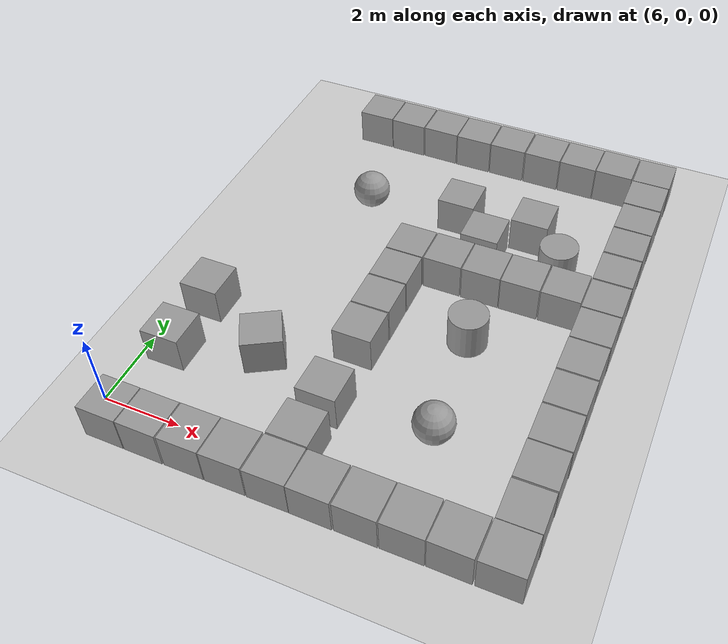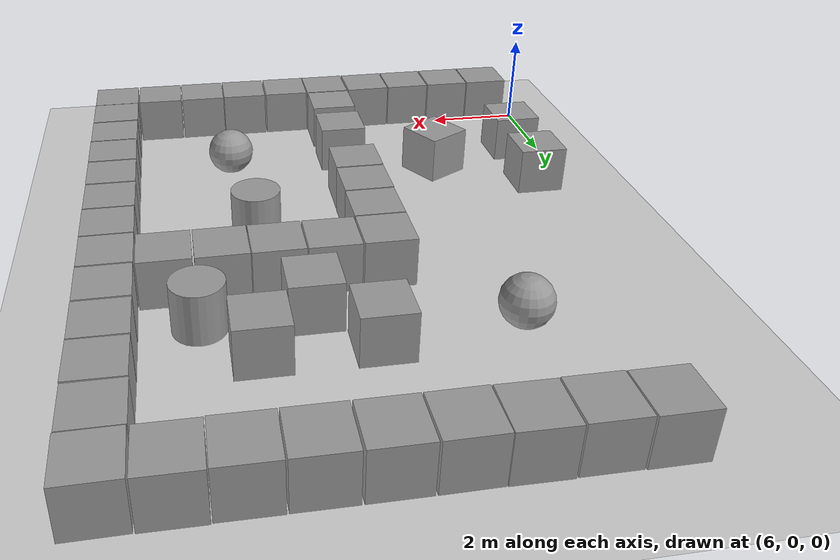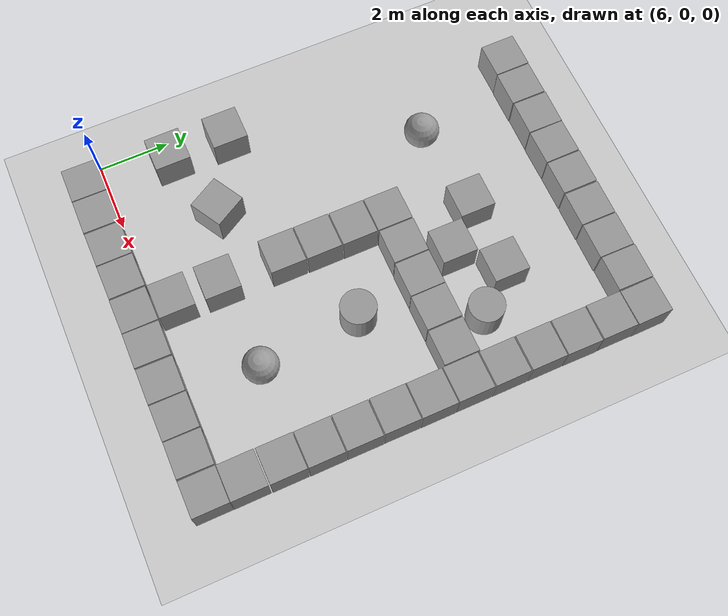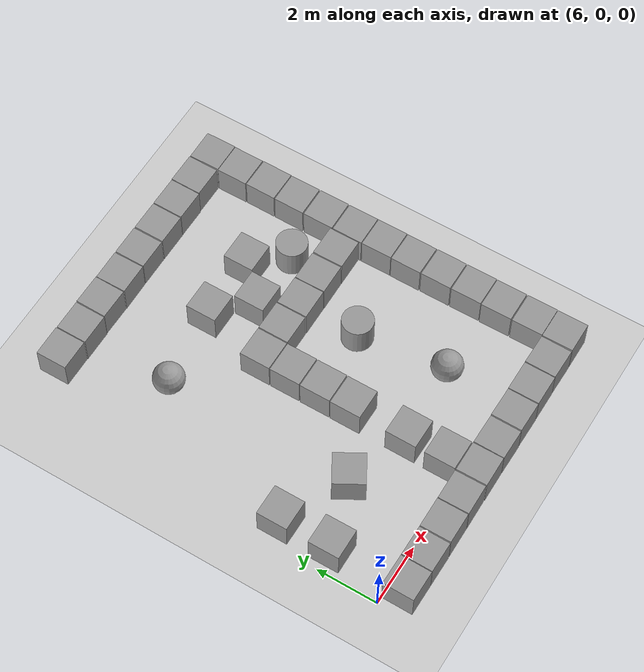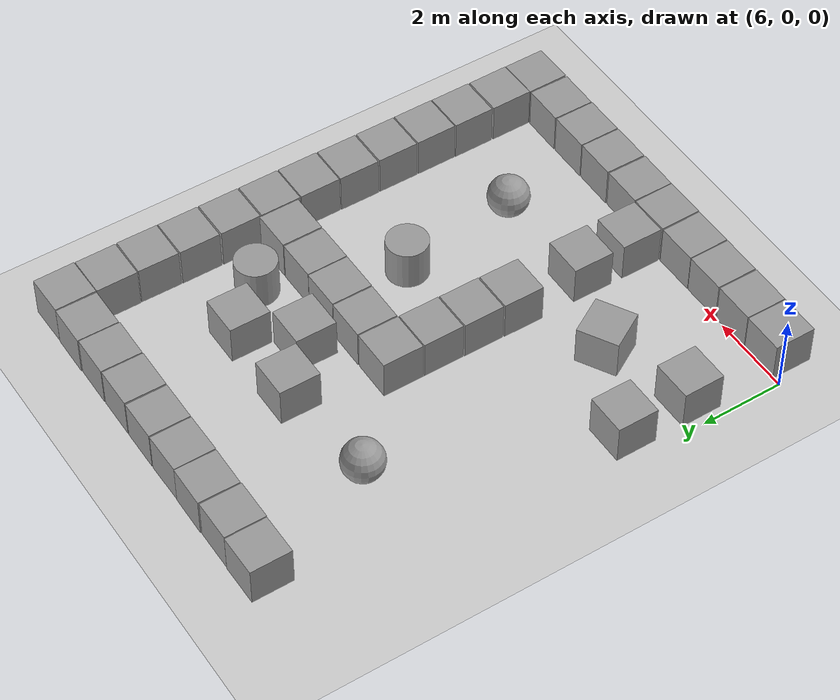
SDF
<sdf version="1.6">
 <world name="tight_mix">
  <include><uri>model://ground_plane</uri></include>
  <include><uri>model://sun</uri></include>
  <model name="unit_box_7">
   <pose>6.7133 -0.4996 0.5 0 0 -0.00618</pose>
   <link name="link">
    <inertial>
     <mass>1</mass>
     <inertia>
      <ixx>0.166667</ixx>
      <ixy>0</ixy>
      <ixz>0</ixz>
      <iyy>0.166667</iyy>
      <iyz>0</iyz>
      <izz>0.166667</izz>
     </inertia>
    </inertial>
    <collision name="collision"><geometry><box><size>1 1 1</size></box></geometry></collision>
    <visual name="visual">
     <geometry><box><size>1 1 1</size></box></geometry>
     <material>
      <script><uri>file://media/materials/scripts/gazebo.material</uri><name>Gazebo/Grey</name></script>
     </material>
    </visual>
   </link>
  </model>
  <model name="unit_box_8">
   <pose>7.7363 -0.5050 0.5 0 0 -0.00628</pose>
   <link name="link">
    <inertial>
     <mass>1</mass>
     <inertia>
      <ixx>0.166667</ixx>
      <ixy>0</ixy>
      <ixz>0</ixz>
      <iyy>0.166667</iyy>
      <iyz>0</iyz>
      <izz>0.166667</izz>
     </inertia>
    </inertial>
    <collision name="collision"><geometry><box><size>1 1 1</size></box></geometry></collision>
    <visual name="visual">
     <geometry><box><size>1 1 1</size></box></geometry>
     <material>
      <script><uri>file://media/materials/scripts/gazebo.material</uri><name>Gazebo/Grey</name></script>
     </material>
    </visual>
   </link>
  </model>
  <model name="unit_box_9">
   <pose>8.7707 -0.5007 0.5 0 0 0.00428</pose>
   <link name="link">
    <inertial>
     <mass>1</mass>
     <inertia>
      <ixx>0.166667</ixx>
      <ixy>0</ixy>
      <ixz>0</ixz>
      <iyy>0.166667</iyy>
      <iyz>0</iyz>
      <izz>0.166667</izz>
     </inertia>
    </inertial>
    <collision name="collision"><geometry><box><size>1 1 1</size></box></geometry></collision>
    <visual name="visual">
     <geometry><box><size>1 1 1</size></box></geometry>
     <material>
      <script><uri>file://media/materials/scripts/gazebo.material</uri><name>Gazebo/Grey</name></script>
     </material>
    </visual>
   </link>
  </model>
  <model name="unit_box_10">
   <pose>9.7949 -0.4959 0.5 0 0 0.01010</pose>
   <link name="link">
    <inertial>
     <mass>1</mass>
     <inertia>
      <ixx>0.166667</ixx>
      <ixy>0</ixy>
      <ixz>0</ixz>
      <iyy>0.166667</iyy>
      <iyz>0</iyz>
      <izz>0.166667</izz>
     </inertia>
    </inertial>
    <collision name="collision"><geometry><box><size>1 1 1</size></box></geometry></collision>
    <visual name="visual">
     <geometry><box><size>1 1 1</size></box></geometry>
     <material>
      <script><uri>file://media/materials/scripts/gazebo.material</uri><name>Gazebo/Grey</name></script>
     </material>
    </visual>
   </link>
  </model>
  <model name="unit_box_11">
   <pose>10.8329 -0.4971 0.5 0 0 0.00733</pose>
   <link name="link">
    <inertial>
     <mass>1</mass>
     <inertia>
      <ixx>0.166667</ixx>
      <ixy>0</ixy>
      <ixz>0</ixz>
      <iyy>0.166667</iyy>
      <iyz>0</iyz>
      <izz>0.166667</izz>
     </inertia>
    </inertial>
    <collision name="collision"><geometry><box><size>1 1 1</size></box></geometry></collision>
    <visual name="visual">
     <geometry><box><size>1 1 1</size></box></geometry>
     <material>
      <script><uri>file://media/materials/scripts/gazebo.material</uri><name>Gazebo/Grey</name></script>
     </material>
    </visual>
   </link>
  </model>
  <model name="unit_box_12">
   <pose>11.8551 -0.5005 0.5 0 0 -0.00881</pose>
   <link name="link">
    <inertial>
     <mass>1</mass>
     <inertia>
      <ixx>0.166667</ixx>
      <ixy>0</ixy>
      <ixz>0</ixz>
      <iyy>0.166667</iyy>
      <iyz>0</iyz>
      <izz>0.166667</izz>
     </inertia>
    </inertial>
    <collision name="collision"><geometry><box><size>1 1 1</size></box></geometry></collision>
    <visual name="visual">
     <geometry><box><size>1 1 1</size></box></geometry>
     <material>
      <script><uri>file://media/materials/scripts/gazebo.material</uri><name>Gazebo/Grey</name></script>
     </material>
    </visual>
   </link>
  </model>
  <model name="unit_box_13">
   <pose>12.8934 -0.4995 0.5 0 0 -0.00824</pose>
   <link name="link">
    <inertial>
     <mass>1</mass>
     <inertia>
      <ixx>0.166667</ixx>
      <ixy>0</ixy>
      <ixz>0</ixz>
      <iyy>0.166667</iyy>
      <iyz>0</iyz>
      <izz>0.166667</izz>
     </inertia>
    </inertial>
    <collision name="collision"><geometry><box><size>1 1 1</size></box></geometry></collision>
    <visual name="visual">
     <geometry><box><size>1 1 1</size></box></geometry>
     <material>
      <script><uri>file://media/materials/scripts/gazebo.material</uri><name>Gazebo/Grey</name></script>
     </material>
    </visual>
   </link>
  </model>
  <model name="unit_box_14">
   <pose>13.9193 -0.4967 0.5 0 0 0.00109</pose>
   <link name="link">
    <inertial>
     <mass>1</mass>
     <inertia>
      <ixx>0.166667</ixx>
      <ixy>0</ixy>
      <ixz>0</ixz>
      <iyy>0.166667</iyy>
      <iyz>0</iyz>
      <izz>0.166667</izz>
     </inertia>
    </inertial>
    <collision name="collision"><geometry><box><size>1 1 1</size></box></geometry></collision>
    <visual name="visual">
     <geometry><box><size>1 1 1</size></box></geometry>
     <material>
      <script><uri>file://media/materials/scripts/gazebo.material</uri><name>Gazebo/Grey</name></script>
     </material>
    </visual>
   </link>
  </model>
  <model name="unit_box_15">
   <pose>14.9455 -0.4948 0.5 0 0 -0.00929</pose>
   <link name="link">
    <inertial>
     <mass>1</mass>
     <inertia>
      <ixx>0.166667</ixx>
      <ixy>0</ixy>
      <ixz>0</ixz>
      <iyy>0.166667</iyy>
      <iyz>0</iyz>
      <izz>0.166667</izz>
     </inertia>
    </inertial>
    <collision name="collision"><geometry><box><size>1 1 1</size></box></geometry></collision>
    <visual name="visual">
     <geometry><box><size>1 1 1</size></box></geometry>
     <material>
      <script><uri>file://media/materials/scripts/gazebo.material</uri><name>Gazebo/Grey</name></script>
     </material>
    </visual>
   </link>
  </model>
  <model name="unit_box_16">
   <pose>15.9841 -0.4943 0.5 0 0 0.00526</pose>
   <link name="link">
    <inertial>
     <mass>1</mass>
     <inertia>
      <ixx>0.166667</ixx>
      <ixy>0</ixy>
      <ixz>0</ixz>
      <iyy>0.166667</iyy>
      <iyz>0</iyz>
      <izz>0.166667</izz>
     </inertia>
    </inertial>
    <collision name="collision"><geometry><box><size>1 1 1</size></box></geometry></collision>
    <visual name="visual">
     <geometry><box><size>1 1 1</size></box></geometry>
     <material>
      <script><uri>file://media/materials/scripts/gazebo.material</uri><name>Gazebo/Grey</name></script>
     </material>
    </visual>
   </link>
  </model>
  <model name="unit_box_25">
   <pose>7.7450 11.8651 0.5 0 0 0.00525</pose>
   <link name="link">
    <inertial>
     <mass>1</mass>
     <inertia>
      <ixx>0.166667</ixx>
      <ixy>0</ixy>
      <ixz>0</ixz>
      <iyy>0.166667</iyy>
      <iyz>0</iyz>
      <izz>0.166667</izz>
     </inertia>
    </inertial>
    <collision name="collision"><geometry><box><size>1 1 1</size></box></geometry></collision>
    <visual name="visual">
     <geometry><box><size>1 1 1</size></box></geometry>
     <material>
      <script><uri>file://media/materials/scripts/gazebo.material</uri><name>Gazebo/Grey</name></script>
     </material>
    </visual>
   </link>
  </model>
  <model name="unit_box_26">
   <pose>8.7709 11.8547 0.5 0 0 -0.00039</pose>
   <link name="link">
    <inertial>
     <mass>1</mass>
     <inertia>
      <ixx>0.166667</ixx>
      <ixy>0</ixy>
      <ixz>0</ixz>
      <iyy>0.166667</iyy>
      <iyz>0</iyz>
      <izz>0.166667</izz>
     </inertia>
    </inertial>
    <collision name="collision"><geometry><box><size>1 1 1</size></box></geometry></collision>
    <visual name="visual">
     <geometry><box><size>1 1 1</size></box></geometry>
     <material>
      <script><uri>file://media/materials/scripts/gazebo.material</uri><name>Gazebo/Grey</name></script>
     </material>
    </visual>
   </link>
  </model>
  <model name="unit_box_27">
   <pose>9.8031 11.8631 0.5 0 0 -0.00991</pose>
   <link name="link">
    <inertial>
     <mass>1</mass>
     <inertia>
      <ixx>0.166667</ixx>
      <ixy>0</ixy>
      <ixz>0</ixz>
      <iyy>0.166667</iyy>
      <iyz>0</iyz>
      <izz>0.166667</izz>
     </inertia>
    </inertial>
    <collision name="collision"><geometry><box><size>1 1 1</size></box></geometry></collision>
    <visual name="visual">
     <geometry><box><size>1 1 1</size></box></geometry>
     <material>
      <script><uri>file://media/materials/scripts/gazebo.material</uri><name>Gazebo/Grey</name></script>
     </material>
    </visual>
   </link>
  </model>
  <model name="unit_box_28">
   <pose>10.8241 11.8551 0.5 0 0 0.00889</pose>
   <link name="link">
    <inertial>
     <mass>1</mass>
     <inertia>
      <ixx>0.166667</ixx>
      <ixy>0</ixy>
      <ixz>0</ixz>
      <iyy>0.166667</iyy>
      <iyz>0</iyz>
      <izz>0.166667</izz>
     </inertia>
    </inertial>
    <collision name="collision"><geometry><box><size>1 1 1</size></box></geometry></collision>
    <visual name="visual">
     <geometry><box><size>1 1 1</size></box></geometry>
     <material>
      <script><uri>file://media/materials/scripts/gazebo.material</uri><name>Gazebo/Grey</name></script>
     </material>
    </visual>
   </link>
  </model>
  <model name="unit_box_29">
   <pose>11.8554 11.8587 0.5 0 0 -0.00050</pose>
   <link name="link">
    <inertial>
     <mass>1</mass>
     <inertia>
      <ixx>0.166667</ixx>
      <ixy>0</ixy>
      <ixz>0</ixz>
      <iyy>0.166667</iyy>
      <iyz>0</iyz>
      <izz>0.166667</izz>
     </inertia>
    </inertial>
    <collision name="collision"><geometry><box><size>1 1 1</size></box></geometry></collision>
    <visual name="visual">
     <geometry><box><size>1 1 1</size></box></geometry>
     <material>
      <script><uri>file://media/materials/scripts/gazebo.material</uri><name>Gazebo/Grey</name></script>
     </material>
    </visual>
   </link>
  </model>
  <model name="unit_box_30">
   <pose>12.8946 11.8556 0.5 0 0 -0.00499</pose>
   <link name="link">
    <inertial>
     <mass>1</mass>
     <inertia>
      <ixx>0.166667</ixx>
      <ixy>0</ixy>
      <ixz>0</ixz>
      <iyy>0.166667</iyy>
      <iyz>0</iyz>
      <izz>0.166667</izz>
     </inertia>
    </inertial>
    <collision name="collision"><geometry><box><size>1 1 1</size></box></geometry></collision>
    <visual name="visual">
     <geometry><box><size>1 1 1</size></box></geometry>
     <material>
      <script><uri>file://media/materials/scripts/gazebo.material</uri><name>Gazebo/Grey</name></script>
     </material>
    </visual>
   </link>
  </model>
  <model name="unit_box_31">
   <pose>13.9233 11.8550 0.5 0 0 -0.00703</pose>
   <link name="link">
    <inertial>
     <mass>1</mass>
     <inertia>
      <ixx>0.166667</ixx>
      <ixy>0</ixy>
      <ixz>0</ixz>
      <iyy>0.166667</iyy>
      <iyz>0</iyz>
      <izz>0.166667</izz>
     </inertia>
    </inertial>
    <collision name="collision"><geometry><box><size>1 1 1</size></box></geometry></collision>
    <visual name="visual">
     <geometry><box><size>1 1 1</size></box></geometry>
     <material>
      <script><uri>file://media/materials/scripts/gazebo.material</uri><name>Gazebo/Grey</name></script>
     </material>
    </visual>
   </link>
  </model>
  <model name="unit_box_32">
   <pose>14.9443 11.8655 0.5 0 0 -0.00558</pose>
   <link name="link">
    <inertial>
     <mass>1</mass>
     <inertia>
      <ixx>0.166667</ixx>
      <ixy>0</ixy>
      <ixz>0</ixz>
      <iyy>0.166667</iyy>
      <iyz>0</iyz>
      <izz>0.166667</izz>
     </inertia>
    </inertial>
    <collision name="collision"><geometry><box><size>1 1 1</size></box></geometry></collision>
    <visual name="visual">
     <geometry><box><size>1 1 1</size></box></geometry>
     <material>
      <script><uri>file://media/materials/scripts/gazebo.material</uri><name>Gazebo/Grey</name></script>
     </material>
    </visual>
   </link>
  </model>
  <model name="unit_box_33">
   <pose>15.9800 11.8585 0.5 0 0 0.01009</pose>
   <link name="link">
    <inertial>
     <mass>1</mass>
     <inertia>
      <ixx>0.166667</ixx>
      <ixy>0</ixy>
      <ixz>0</ixz>
      <iyy>0.166667</iyy>
      <iyz>0</iyz>
      <izz>0.166667</izz>
     </inertia>
    </inertial>
    <collision name="collision"><geometry><box><size>1 1 1</size></box></geometry></collision>
    <visual name="visual">
     <geometry><box><size>1 1 1</size></box></geometry>
     <material>
      <script><uri>file://media/materials/scripts/gazebo.material</uri><name>Gazebo/Grey</name></script>
     </material>
    </visual>
   </link>
  </model>
  <model name="unit_box_45">
   <pose>15.9843 0.5179 0.5 0 0 0.00867</pose>
   <link name="link">
    <inertial>
     <mass>1</mass>
     <inertia>
      <ixx>0.166667</ixx>
      <ixy>0</ixy>
      <ixz>0</ixz>
      <iyy>0.166667</iyy>
      <iyz>0</iyz>
      <izz>0.166667</izz>
     </inertia>
    </inertial>
    <collision name="collision"><geometry><box><size>1 1 1</size></box></geometry></collision>
    <visual name="visual">
     <geometry><box><size>1 1 1</size></box></geometry>
     <material>
      <script><uri>file://media/materials/scripts/gazebo.material</uri><name>Gazebo/Grey</name></script>
     </material>
    </visual>
   </link>
  </model>
  <model name="unit_box_46">
   <pose>15.9833 1.5576 0.5 0 0 0.00534</pose>
   <link name="link">
    <inertial>
     <mass>1</mass>
     <inertia>
      <ixx>0.166667</ixx>
      <ixy>0</ixy>
      <ixz>0</ixz>
      <iyy>0.166667</iyy>
      <iyz>0</iyz>
      <izz>0.166667</izz>
     </inertia>
    </inertial>
    <collision name="collision"><geometry><box><size>1 1 1</size></box></geometry></collision>
    <visual name="visual">
     <geometry><box><size>1 1 1</size></box></geometry>
     <material>
      <script><uri>file://media/materials/scripts/gazebo.material</uri><name>Gazebo/Grey</name></script>
     </material>
    </visual>
   </link>
  </model>
  <model name="unit_box_47">
   <pose>15.9860 2.5837 0.5 0 0 0.00522</pose>
   <link name="link">
    <inertial>
     <mass>1</mass>
     <inertia>
      <ixx>0.166667</ixx>
      <ixy>0</ixy>
      <ixz>0</ixz>
      <iyy>0.166667</iyy>
      <iyz>0</iyz>
      <izz>0.166667</izz>
     </inertia>
    </inertial>
    <collision name="collision"><geometry><box><size>1 1 1</size></box></geometry></collision>
    <visual name="visual">
     <geometry><box><size>1 1 1</size></box></geometry>
     <material>
      <script><uri>file://media/materials/scripts/gazebo.material</uri><name>Gazebo/Grey</name></script>
     </material>
    </visual>
   </link>
  </model>
  <model name="unit_box_48">
   <pose>15.9834 3.6163 0.5 0 0 0.00009</pose>
   <link name="link">
    <inertial>
     <mass>1</mass>
     <inertia>
      <ixx>0.166667</ixx>
      <ixy>0</ixy>
      <ixz>0</ixz>
      <iyy>0.166667</iyy>
      <iyz>0</iyz>
      <izz>0.166667</izz>
     </inertia>
    </inertial>
    <collision name="collision"><geometry><box><size>1 1 1</size></box></geometry></collision>
    <visual name="visual">
     <geometry><box><size>1 1 1</size></box></geometry>
     <material>
      <script><uri>file://media/materials/scripts/gazebo.material</uri><name>Gazebo/Grey</name></script>
     </material>
    </visual>
   </link>
  </model>
  <model name="unit_box_49">
   <pose>15.9788 4.6524 0.5 0 0 -0.00254</pose>
   <link name="link">
    <inertial>
     <mass>1</mass>
     <inertia>
      <ixx>0.166667</ixx>
      <ixy>0</ixy>
      <ixz>0</ixz>
      <iyy>0.166667</iyy>
      <iyz>0</iyz>
      <izz>0.166667</izz>
     </inertia>
    </inertial>
    <collision name="collision"><geometry><box><size>1 1 1</size></box></geometry></collision>
    <visual name="visual">
     <geometry><box><size>1 1 1</size></box></geometry>
     <material>
      <script><uri>file://media/materials/scripts/gazebo.material</uri><name>Gazebo/Grey</name></script>
     </material>
    </visual>
   </link>
  </model>
  <model name="unit_box_50">
   <pose>15.9830 5.6807 0.5 0 0 0.00433</pose>
   <link name="link">
    <inertial>
     <mass>1</mass>
     <inertia>
      <ixx>0.166667</ixx>
      <ixy>0</ixy>
      <ixz>0</ixz>
      <iyy>0.166667</iyy>
      <iyz>0</iyz>
      <izz>0.166667</izz>
     </inertia>
    </inertial>
    <collision name="collision"><geometry><box><size>1 1 1</size></box></geometry></collision>
    <visual name="visual">
     <geometry><box><size>1 1 1</size></box></geometry>
     <material>
      <script><uri>file://media/materials/scripts/gazebo.material</uri><name>Gazebo/Grey</name></script>
     </material>
    </visual>
   </link>
  </model>
  <model name="unit_box_51">
   <pose>15.9777 6.7069 0.5 0 0 0.00367</pose>
   <link name="link">
    <inertial>
     <mass>1</mass>
     <inertia>
      <ixx>0.166667</ixx>
      <ixy>0</ixy>
      <ixz>0</ixz>
      <iyy>0.166667</iyy>
      <iyz>0</iyz>
      <izz>0.166667</izz>
     </inertia>
    </inertial>
    <collision name="collision"><geometry><box><size>1 1 1</size></box></geometry></collision>
    <visual name="visual">
     <geometry><box><size>1 1 1</size></box></geometry>
     <material>
      <script><uri>file://media/materials/scripts/gazebo.material</uri><name>Gazebo/Grey</name></script>
     </material>
    </visual>
   </link>
  </model>
  <model name="unit_box_52">
   <pose>15.9757 7.7423 0.5 0 0 0.00590</pose>
   <link name="link">
    <inertial>
     <mass>1</mass>
     <inertia>
      <ixx>0.166667</ixx>
      <ixy>0</ixy>
      <ixz>0</ixz>
      <iyy>0.166667</iyy>
      <iyz>0</iyz>
      <izz>0.166667</izz>
     </inertia>
    </inertial>
    <collision name="collision"><geometry><box><size>1 1 1</size></box></geometry></collision>
    <visual name="visual">
     <geometry><box><size>1 1 1</size></box></geometry>
     <material>
      <script><uri>file://media/materials/scripts/gazebo.material</uri><name>Gazebo/Grey</name></script>
     </material>
    </visual>
   </link>
  </model>
  <model name="unit_box_53">
   <pose>15.9746 8.7809 0.5 0 0 0.00186</pose>
   <link name="link">
    <inertial>
     <mass>1</mass>
     <inertia>
      <ixx>0.166667</ixx>
      <ixy>0</ixy>
      <ixz>0</ixz>
      <iyy>0.166667</iyy>
      <iyz>0</iyz>
      <izz>0.166667</izz>
     </inertia>
    </inertial>
    <collision name="collision"><geometry><box><size>1 1 1</size></box></geometry></collision>
    <visual name="visual">
     <geometry><box><size>1 1 1</size></box></geometry>
     <material>
      <script><uri>file://media/materials/scripts/gazebo.material</uri><name>Gazebo/Grey</name></script>
     </material>
    </visual>
   </link>
  </model>
  <model name="unit_box_54">
   <pose>15.9807 9.8101 0.5 0 0 -0.00928</pose>
   <link name="link">
    <inertial>
     <mass>1</mass>
     <inertia>
      <ixx>0.166667</ixx>
      <ixy>0</ixy>
      <ixz>0</ixz>
      <iyy>0.166667</iyy>
      <iyz>0</iyz>
      <izz>0.166667</izz>
     </inertia>
    </inertial>
    <collision name="collision"><geometry><box><size>1 1 1</size></box></geometry></collision>
    <visual name="visual">
     <geometry><box><size>1 1 1</size></box></geometry>
     <material>
      <script><uri>file://media/materials/scripts/gazebo.material</uri><name>Gazebo/Grey</name></script>
     </material>
    </visual>
   </link>
  </model>
  <model name="unit_box_55">
   <pose>15.9743 10.8426 0.5 0 0 0.00181</pose>
   <link name="link">
    <inertial>
     <mass>1</mass>
     <inertia>
      <ixx>0.166667</ixx>
      <ixy>0</ixy>
      <ixz>0</ixz>
      <iyy>0.166667</iyy>
      <iyz>0</iyz>
      <izz>0.166667</izz>
     </inertia>
    </inertial>
    <collision name="collision"><geometry><box><size>1 1 1</size></box></geometry></collision>
    <visual name="visual">
     <geometry><box><size>1 1 1</size></box></geometry>
     <material>
      <script><uri>file://media/materials/scripts/gazebo.material</uri><name>Gazebo/Grey</name></script>
     </material>
    </visual>
   </link>
  </model>
  <model name="unit_box_62">
   <pose>6.7089 1.9158 0.5 0 0 0.00734</pose>
   <link name="link">
    <inertial>
     <mass>1</mass>
     <inertia>
      <ixx>0.166667</ixx>
      <ixy>0</ixy>
      <ixz>0</ixz>
      <iyy>0.166667</iyy>
      <iyz>0</iyz>
      <izz>0.166667</izz>
     </inertia>
    </inertial>
    <collision name="collision"><geometry><box><size>1 1 1</size></box></geometry></collision>
    <visual name="visual">
     <geometry><box><size>1 1 1</size></box></geometry>
     <material>
      <script><uri>file://media/materials/scripts/gazebo.material</uri><name>Gazebo/Grey</name></script>
     </material>
    </visual>
   </link>
  </model>
  <model name="unit_box_67">
   <pose>6.7120 3.6148 0.5 0 0 0.00106</pose>
   <link name="link">
    <inertial>
     <mass>1</mass>
     <inertia>
      <ixx>0.166667</ixx>
      <ixy>0</ixy>
      <ixz>0</ixz>
      <iyy>0.166667</iyy>
      <iyz>0</iyz>
      <izz>0.166667</izz>
     </inertia>
    </inertial>
    <collision name="collision"><geometry><box><size>1 1 1</size></box></geometry></collision>
    <visual name="visual">
     <geometry><box><size>1 1 1</size></box></geometry>
     <material>
      <script><uri>file://media/materials/scripts/gazebo.material</uri><name>Gazebo/Grey</name></script>
     </material>
    </visual>
   </link>
  </model>
  <model name="unit_box_80">
   <pose>10.8269 0.5353 0.5 0 0 -0.00042</pose>
   <link name="link">
    <inertial>
     <mass>1</mass>
     <inertia>
      <ixx>0.166667</ixx>
      <ixy>0</ixy>
      <ixz>0</ixz>
      <iyy>0.166667</iyy>
      <iyz>0</iyz>
      <izz>0.166667</izz>
     </inertia>
    </inertial>
    <collision name="collision"><geometry><box><size>1 1 1</size></box></geometry></collision>
    <visual name="visual">
     <geometry><box><size>1 1 1</size></box></geometry>
     <material>
      <script><uri>file://media/materials/scripts/gazebo.material</uri><name>Gazebo/Grey</name></script>
     </material>
    </visual>
   </link>
  </model>
  <model name="unit_box_81">
   <pose>10.8322 1.8273 0.5 0 0 -0.00685</pose>
   <link name="link">
    <inertial>
     <mass>1</mass>
     <inertia>
      <ixx>0.166667</ixx>
      <ixy>0</ixy>
      <ixz>0</ixz>
      <iyy>0.166667</iyy>
      <iyz>0</iyz>
      <izz>0.166667</izz>
     </inertia>
    </inertial>
    <collision name="collision"><geometry><box><size>1 1 1</size></box></geometry></collision>
    <visual name="visual">
     <geometry><box><size>1 1 1</size></box></geometry>
     <material>
      <script><uri>file://media/materials/scripts/gazebo.material</uri><name>Gazebo/Grey</name></script>
     </material>
    </visual>
   </link>
  </model>
  <model name="unit_box_82">
   <pose>10.8241 3.6776 0.5 0 0 -0.00170</pose>
   <link name="link">
    <inertial>
     <mass>1</mass>
     <inertia>
      <ixx>0.166667</ixx>
      <ixy>0</ixy>
      <ixz>0</ixz>
      <iyy>0.166667</iyy>
      <iyz>0</iyz>
      <izz>0.166667</izz>
     </inertia>
    </inertial>
    <collision name="collision"><geometry><box><size>1 1 1</size></box></geometry></collision>
    <visual name="visual">
     <geometry><box><size>1 1 1</size></box></geometry>
     <material>
      <script><uri>file://media/materials/scripts/gazebo.material</uri><name>Gazebo/Grey</name></script>
     </material>
    </visual>
   </link>
  </model>
  <model name="unit_box_83">
   <pose>10.8303 4.7114 0.5 0 0 0.00401</pose>
   <link name="link">
    <inertial>
     <mass>1</mass>
     <inertia>
      <ixx>0.166667</ixx>
      <ixy>0</ixy>
      <ixz>0</ixz>
      <iyy>0.166667</iyy>
      <iyz>0</iyz>
      <izz>0.166667</izz>
     </inertia>
    </inertial>
    <collision name="collision"><geometry><box><size>1 1 1</size></box></geometry></collision>
    <visual name="visual">
     <geometry><box><size>1 1 1</size></box></geometry>
     <material>
      <script><uri>file://media/materials/scripts/gazebo.material</uri><name>Gazebo/Grey</name></script>
     </material>
    </visual>
   </link>
  </model>
  <model name="unit_box_84">
   <pose>10.8345 5.7436 0.5 0 0 0.00392</pose>
   <link name="link">
    <inertial>
     <mass>1</mass>
     <inertia>
      <ixx>0.166667</ixx>
      <ixy>0</ixy>
      <ixz>0</ixz>
      <iyy>0.166667</iyy>
      <iyz>0</iyz>
      <izz>0.166667</izz>
     </inertia>
    </inertial>
    <collision name="collision"><geometry><box><size>1 1 1</size></box></geometry></collision>
    <visual name="visual">
     <geometry><box><size>1 1 1</size></box></geometry>
     <material>
      <script><uri>file://media/materials/scripts/gazebo.material</uri><name>Gazebo/Grey</name></script>
     </material>
    </visual>
   </link>
  </model>
  <model name="unit_box_85">
   <pose>10.8337 6.7705 0.5 0 0 -0.00057</pose>
   <link name="link">
    <inertial>
     <mass>1</mass>
     <inertia>
      <ixx>0.166667</ixx>
      <ixy>0</ixy>
      <ixz>0</ixz>
      <iyy>0.166667</iyy>
      <iyz>0</iyz>
      <izz>0.166667</izz>
     </inertia>
    </inertial>
    <collision name="collision"><geometry><box><size>1 1 1</size></box></geometry></collision>
    <visual name="visual">
     <geometry><box><size>1 1 1</size></box></geometry>
     <material>
      <script><uri>file://media/materials/scripts/gazebo.material</uri><name>Gazebo/Grey</name></script>
     </material>
    </visual>
   </link>
  </model>
  <model name="unit_box_86">
   <pose>11.8650 6.7747 0.5 0 0 -0.00239</pose>
   <link name="link">
    <inertial>
     <mass>1</mass>
     <inertia>
      <ixx>0.166667</ixx>
      <ixy>0</ixy>
      <ixz>0</ixz>
      <iyy>0.166667</iyy>
      <iyz>0</iyz>
      <izz>0.166667</izz>
     </inertia>
    </inertial>
    <collision name="collision"><geometry><box><size>1 1 1</size></box></geometry></collision>
    <visual name="visual">
     <geometry><box><size>1 1 1</size></box></geometry>
     <material>
      <script><uri>file://media/materials/scripts/gazebo.material</uri><name>Gazebo/Grey</name></script>
     </material>
    </visual>
   </link>
  </model>
  <model name="unit_box_87">
   <pose>12.8944 6.7692 0.5 0 0 0.00527</pose>
   <link name="link">
    <inertial>
     <mass>1</mass>
     <inertia>
      <ixx>0.166667</ixx>
      <ixy>0</ixy>
      <ixz>0</ixz>
      <iyy>0.166667</iyy>
      <iyz>0</iyz>
      <izz>0.166667</izz>
     </inertia>
    </inertial>
    <collision name="collision"><geometry><box><size>1 1 1</size></box></geometry></collision>
    <visual name="visual">
     <geometry><box><size>1 1 1</size></box></geometry>
     <material>
      <script><uri>file://media/materials/scripts/gazebo.material</uri><name>Gazebo/Grey</name></script>
     </material>
    </visual>
   </link>
  </model>
  <model name="unit_box_88">
   <pose>13.9143 6.7711 0.5 0 0 0.00936</pose>
   <link name="link">
    <inertial>
     <mass>1</mass>
     <inertia>
      <ixx>0.166667</ixx>
      <ixy>0</ixy>
      <ixz>0</ixz>
      <iyy>0.166667</iyy>
      <iyz>0</iyz>
      <izz>0.166667</izz>
     </inertia>
    </inertial>
    <collision name="collision"><geometry><box><size>1 1 1</size></box></geometry></collision>
    <visual name="visual">
     <geometry><box><size>1 1 1</size></box></geometry>
     <material>
      <script><uri>file://media/materials/scripts/gazebo.material</uri><name>Gazebo/Grey</name></script>
     </material>
    </visual>
   </link>
  </model>
  <model name="unit_box_89">
   <pose>14.9493 6.7744 0.5 0 0 0.00378</pose>
   <link name="link">
    <inertial>
     <mass>1</mass>
     <inertia>
      <ixx>0.166667</ixx>
      <ixy>0</ixy>
      <ixz>0</ixz>
      <iyy>0.166667</iyy>
      <iyz>0</iyz>
      <izz>0.166667</izz>
     </inertia>
    </inertial>
    <collision name="collision"><geometry><box><size>1 1 1</size></box></geometry></collision>
    <visual name="visual">
     <geometry><box><size>1 1 1</size></box></geometry>
     <material>
      <script><uri>file://media/materials/scripts/gazebo.material</uri><name>Gazebo/Grey</name></script>
     </material>
    </visual>
   </link>
  </model>
  <model name="unit_box_91">
   <pose>8.7700 2.6000 0.5 0 0 0.52360</pose>
   <link name="link">
    <inertial>
     <mass>1</mass>
     <inertia>
      <ixx>0.166667</ixx>
      <ixy>0</ixy>
      <ixz>0</ixz>
      <iyy>0.166667</iyy>
      <iyz>0</iyz>
      <izz>0.166667</izz>
     </inertia>
    </inertial>
    <collision name="collision"><geometry><box><size>1 1 1</size></box></geometry></collision>
    <visual name="visual">
     <geometry><box><size>1 1 1</size></box></geometry>
     <material>
      <script><uri>file://media/materials/scripts/gazebo.material</uri><name>Gazebo/Grey</name></script>
     </material>
    </visual>
   </link>
  </model>
  <model name="unit_box_92">
   <pose>11.3700 9.0000 0.5 0 0 0.00000</pose>
   <link name="link">
    <inertial>
     <mass>1</mass>
     <inertia>
      <ixx>0.166667</ixx>
      <ixy>0</ixy>
      <ixz>0</ixz>
      <iyy>0.166667</iyy>
      <iyz>0</iyz>
      <izz>0.166667</izz>
     </inertia>
    </inertial>
    <collision name="collision"><geometry><box><size>1 1 1</size></box></geometry></collision>
    <visual name="visual">
     <geometry><box><size>1 1 1</size></box></geometry>
     <material>
      <script><uri>file://media/materials/scripts/gazebo.material</uri><name>Gazebo/Grey</name></script>
     </material>
    </visual>
   </link>
  </model>
  <model name="unit_box_93">
   <pose>12.4000 7.9700 0.5 0 0 0.00000</pose>
   <link name="link">
    <inertial>
     <mass>1</mass>
     <inertia>
      <ixx>0.166667</ixx>
      <ixy>0</ixy>
      <ixz>0</ixz>
      <iyy>0.166667</iyy>
      <iyz>0</iyz>
      <izz>0.166667</izz>
     </inertia>
    </inertial>
    <collision name="collision"><geometry><box><size>1 1 1</size></box></geometry></collision>
    <visual name="visual">
     <geometry><box><size>1 1 1</size></box></geometry>
     <material>
      <script><uri>file://media/materials/scripts/gazebo.material</uri><name>Gazebo/Grey</name></script>
     </material>
    </visual>
   </link>
  </model>
  <model name="unit_box_94">
   <pose>13.4300 9.0000 0.5 0 0 0.00000</pose>
   <link name="link">
    <inertial>
     <mass>1</mass>
     <inertia>
      <ixx>0.166667</ixx>
      <ixy>0</ixy>
      <ixz>0</ixz>
      <iyy>0.166667</iyy>
      <iyz>0</iyz>
      <izz>0.166667</izz>
     </inertia>
    </inertial>
    <collision name="collision"><geometry><box><size>1 1 1</size></box></geometry></collision>
    <visual name="visual">
     <geometry><box><size>1 1 1</size></box></geometry>
     <material>
      <script><uri>file://media/materials/scripts/gazebo.material</uri><name>Gazebo/Grey</name></script>
     </material>
    </visual>
   </link>
  </model>
  <model name="unit_sphere_1">
   <pose>8.7700 8.7700 0.5 0 0 0.00000</pose>
   <link name="link">
    <inertial>
     <mass>1</mass>
     <inertia>
      <ixx>0.166667</ixx>
      <ixy>0</ixy>
      <ixz>0</ixz>
      <iyy>0.166667</iyy>
      <iyz>0</iyz>
      <izz>0.166667</izz>
     </inertia>
    </inertial>
    <collision name="collision"><geometry><sphere><radius>0.5</radius></sphere></geometry></collision>
    <visual name="visual">
     <geometry><sphere><radius>0.5</radius></sphere></geometry>
     <material>
      <script><uri>file://media/materials/scripts/gazebo.material</uri><name>Gazebo/Grey</name></script>
     </material>
    </visual>
   </link>
  </model>
  <model name="unit_sphere_2">
   <pose>13.4000 2.0000 0.5 0 0 0.00000</pose>
   <link name="link">
    <inertial>
     <mass>1</mass>
     <inertia>
      <ixx>0.166667</ixx>
      <ixy>0</ixy>
      <ixz>0</ixz>
      <iyy>0.166667</iyy>
      <iyz>0</iyz>
      <izz>0.166667</izz>
     </inertia>
    </inertial>
    <collision name="collision"><geometry><sphere><radius>0.5</radius></sphere></geometry></collision>
    <visual name="visual">
     <geometry><sphere><radius>0.5</radius></sphere></geometry>
     <material>
      <script><uri>file://media/materials/scripts/gazebo.material</uri><name>Gazebo/Grey</name></script>
     </material>
    </visual>
   </link>
  </model>
  <model name="unit_cylinder_0">
   <pose>14.4000 8.0000 0.5 0 0 0.00000</pose>
   <link name="link">
    <inertial>
     <mass>1</mass>
     <inertia>
      <ixx>0.166667</ixx>
      <ixy>0</ixy>
      <ixz>0</ixz>
      <iyy>0.166667</iyy>
      <iyz>0</iyz>
      <izz>0.166667</izz>
     </inertia>
    </inertial>
    <collision name="collision">
     <geometry><cylinder><radius>0.5</radius><length>1</length></cylinder></geometry>
    </collision>
    <visual name="visual">
     <geometry><cylinder><radius>0.5</radius><length>1</length></cylinder></geometry>
     <material>
      <script><uri>file://media/materials/scripts/gazebo.material</uri><name>Gazebo/Grey</name></script>
     </material>
    </visual>
   </link>
  </model>
  <model name="unit_cylinder_1">
   <pose>13.1000 4.9000 0.5 0 0 0.00000</pose>
   <link name="link">
    <inertial>
     <mass>1</mass>
     <inertia>
      <ixx>0.166667</ixx>
      <ixy>0</ixy>
      <ixz>0</ixz>
      <iyy>0.166667</iyy>
      <iyz>0</iyz>
      <izz>0.166667</izz>
     </inertia>
    </inertial>
    <collision name="collision">
     <geometry><cylinder><radius>0.5</radius><length>1</length></cylinder></geometry>
    </collision>
    <visual name="visual">
     <geometry><cylinder><radius>0.5</radius><length>1</length></cylinder></geometry>
     <material>
      <script><uri>file://media/materials/scripts/gazebo.material</uri><name>Gazebo/Grey</name></script>
     </material>
    </visual>
   </link>
  </model>
 </world>
</sdf>
